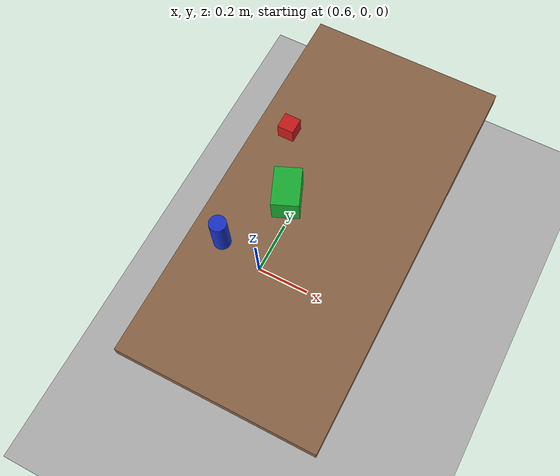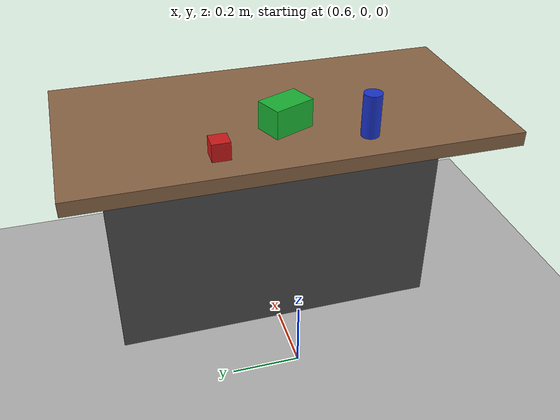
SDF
<?xml version="1.0"?>
<sdf version="1.9">
  <world name="galbot_table">
    <physics name="2ms" type="ignored">
      <max_step_size>0.002</max_step_size>
      <real_time_factor>1.0</real_time_factor>
      <dart>
        <!-- Bullet is much faster than the default FCL for the robot's mesh colliders. -->
        <collision_detector>bullet</collision_detector>
      </dart>
    </physics>

    <plugin filename="gz-sim-physics-system" name="gz::sim::systems::Physics"/>
    <plugin filename="gz-sim-user-commands-system" name="gz::sim::systems::UserCommands"/>
    <plugin filename="gz-sim-scene-broadcaster-system" name="gz::sim::systems::SceneBroadcaster"/>
    <plugin filename="gz-sim-sensors-system" name="gz::sim::systems::Sensors">
      <render_engine>ogre2</render_engine>
    </plugin>

    <scene>
      <ambient>0.6 0.6 0.6 1</ambient>
      <background>0.75 0.8 0.85 1</background>
      <shadows>true</shadows>
    </scene>

    <light type="directional" name="sun">
      <cast_shadows>true</cast_shadows>
      <pose>0 0 10 0 0 0</pose>
      <diffuse>0.9 0.9 0.9 1</diffuse>
      <specular>0.2 0.2 0.2 1</specular>
      <direction>-0.4 0.2 -0.9</direction>
    </light>

    <model name="ground_plane">
      <static>true</static>
      <link name="link">
        <collision name="collision">
          <geometry><plane><normal>0 0 1</normal><size>100 100</size></plane></geometry>
        </collision>
        <visual name="visual">
          <geometry><plane><normal>0 0 1</normal><size>100 100</size></plane></geometry>
          <material>
            <ambient>0.7 0.7 0.7 1</ambient>
            <diffuse>0.7 0.7 0.7 1</diffuse>
          </material>
        </visual>
      </link>
    </model>

    <!-- Work table in front of the robot, top at 0.72 m. -->
    <model name="table">
      <static>true</static>
      <pose>0.85 0 0 0 0 0</pose>
      <link name="link">
        <collision name="top_collision">
          <pose>0 0 0.7 0 0 0</pose>
          <geometry><box><size>0.6 1.2 0.04</size></box></geometry>
        </collision>
        <visual name="top_visual">
          <pose>0 0 0.7 0 0 0</pose>
          <geometry><box><size>0.6 1.2 0.04</size></box></geometry>
          <material>
            <ambient>0.55 0.4 0.28 1</ambient>
            <diffuse>0.55 0.4 0.28 1</diffuse>
          </material>
        </visual>
        <collision name="base_collision">
          <pose>0.1 0 0.34 0 0 0</pose>
          <geometry><box><size>0.3 1.0 0.68</size></box></geometry>
        </collision>
        <visual name="base_visual">
          <pose>0.1 0 0.34 0 0 0</pose>
          <geometry><box><size>0.3 1.0 0.68</size></box></geometry>
          <material>
            <ambient>0.3 0.3 0.3 1</ambient>
            <diffuse>0.3 0.3 0.3 1</diffuse>
          </material>
        </visual>
      </link>
    </model>

    <model name="red_cube">
      <pose>0.65 0.2 0.745 0 0 0</pose>
      <link name="link">
        <inertial>
          <mass>0.05</mass>
          <inertia><ixx>5.2e-6</ixx><iyy>5.2e-6</iyy><izz>5.2e-6</izz></inertia>
        </inertial>
        <collision name="collision">
          <geometry><box><size>0.05 0.05 0.05</size></box></geometry>
          <surface><friction><ode><mu>1.5</mu><mu2>1.5</mu2></ode></friction></surface>
        </collision>
        <visual name="visual">
          <geometry><box><size>0.05 0.05 0.05</size></box></geometry>
          <material><ambient>0.8 0.1 0.1 1</ambient><diffuse>0.8 0.1 0.1 1</diffuse></material>
        </visual>
      </link>
    </model>

    <model name="blue_can">
      <pose>0.65 -0.2 0.78 0 0 0</pose>
      <link name="link">
        <inertial>
          <mass>0.1</mass>
          <inertia><ixx>7.7e-5</ixx><iyy>7.7e-5</iyy><izz>3.1e-5</izz></inertia>
        </inertial>
        <collision name="collision">
          <geometry><cylinder><radius>0.025</radius><length>0.12</length></cylinder></geometry>
          <surface><friction><ode><mu>1.5</mu><mu2>1.5</mu2></ode></friction></surface>
        </collision>
        <visual name="visual">
          <geometry><cylinder><radius>0.025</radius><length>0.12</length></cylinder></geometry>
          <material><ambient>0.1 0.2 0.8 1</ambient><diffuse>0.1 0.2 0.8 1</diffuse></material>
        </visual>
      </link>
    </model>

    <model name="green_box">
      <pose>0.75 0 0.76 0 0 0.4</pose>
      <link name="link">
        <inertial>
          <mass>0.2</mass>
          <inertia><ixx>2.1e-4</ixx><iyy>1.4e-4</iyy><izz>2.1e-4</izz></inertia>
        </inertial>
        <collision name="collision">
          <geometry><box><size>0.08 0.12 0.08</size></box></geometry>
        </collision>
        <visual name="visual">
          <geometry><box><size>0.08 0.12 0.08</size></box></geometry>
          <material><ambient>0.1 0.7 0.2 1</ambient><diffuse>0.1 0.7 0.2 1</diffuse></material>
        </visual>
      </link>
    </model>
  </world>
</sdf>
